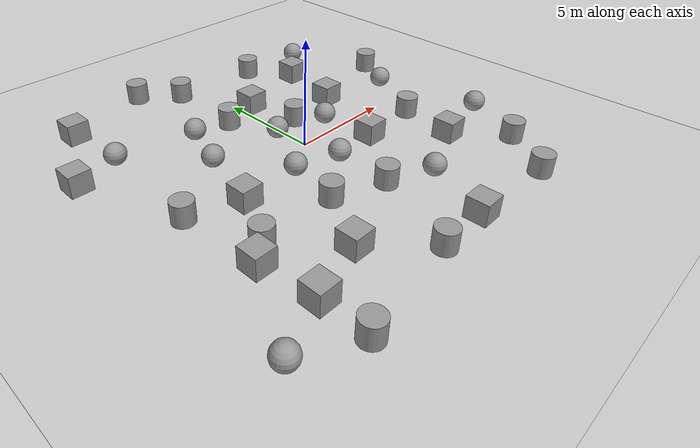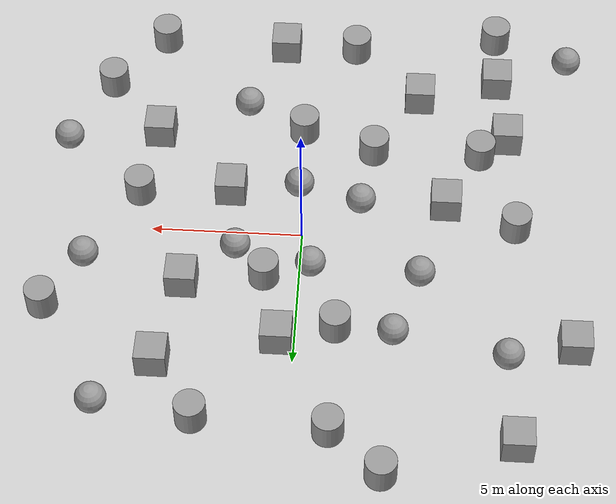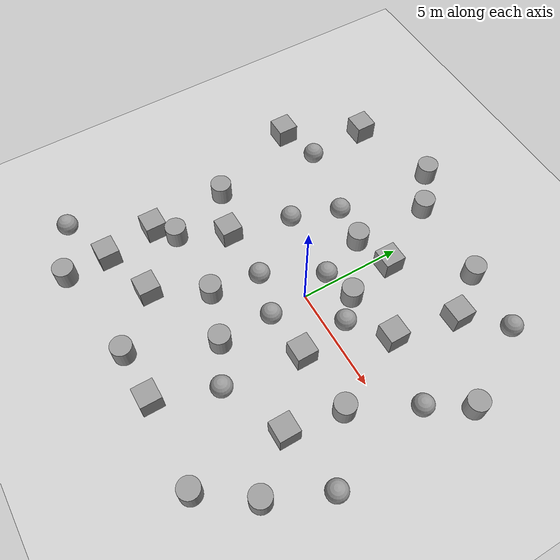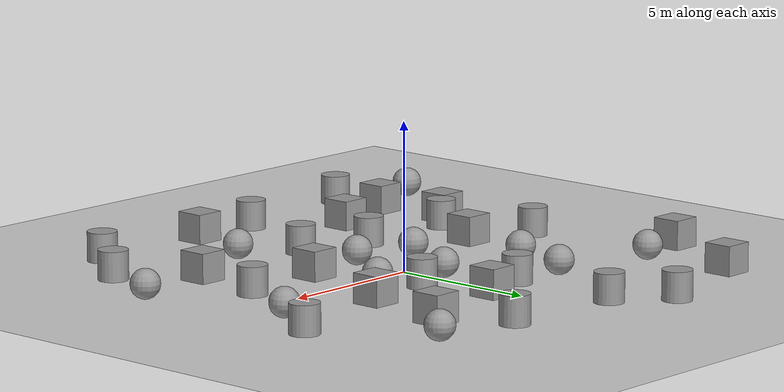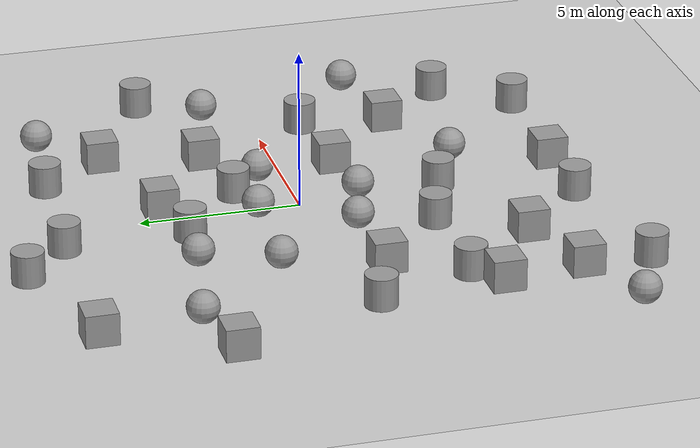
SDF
<sdf version="1.7">
 <world name="default">
  <light name="sun" type="directional">
   <pose>0 0 10 0 -0 0</pose>
   <diffuse>0.8 0.8 0.8 1</diffuse>
   <specular>0.2 0.2 0.2 1</specular>
   <attenuation>
    <range>1000</range>
    <constant>0.9</constant>
    <linear>0.01</linear>
    <quadratic>0.001</quadratic>
   </attenuation>
   <direction>-0.5 0.1 -0.9</direction>
   <spot><inner_angle>0</inner_angle><outer_angle>0</outer_angle><falloff>0</falloff></spot>
  </light>
  <model name="ground_plane">
   <static>1</static>
   <link name="link">
    <collision name="collision">
     <geometry><plane><normal>0 0 1</normal><size>100 100</size></plane></geometry>
     <surface>
      <contact><collide_bitmask>65535</collide_bitmask></contact>
      <friction><ode><mu>100</mu><mu2>50</mu2></ode></friction>
     </surface>
    </collision>
    <visual name="visual">
     <cast_shadows>0</cast_shadows>
     <geometry><plane><normal>0 0 1</normal><size>100 100</size></plane></geometry>
     <material>
      <script><uri>file://media/materials/scripts/gazebo.material</uri><name>Gazebo/Grey</name></script>
     </material>
    </visual>
   </link>
  </model>
  <gravity>0 0 -9.8</gravity>
  <magnetic_field>6e-06 2.3e-05 -4.2e-05</magnetic_field>
  <atmosphere type="adiabatic"/>
  <physics type="ode">
   <max_step_size>0.001</max_step_size>
   <real_time_factor>1</real_time_factor>
   <real_time_update_rate>1000</real_time_update_rate>
  </physics>
  <scene><ambient>0.4 0.4 0.4 1</ambient><background>0.7 0.7 0.7 1</background><shadows>1</shadows></scene>
  <spherical_coordinates>
   <surface_model>EARTH_WGS84</surface_model>
   <latitude_deg>0</latitude_deg>
   <longitude_deg>0</longitude_deg>
   <elevation>0</elevation>
   <heading_deg>0</heading_deg>
  </spherical_coordinates>
  <model name="unit_sphere">
   <pose>-0.365175 1.39418 0.5 0 -0 0</pose>
   <link name="link">
    <inertial>
     <mass>1</mass>
     <inertia><ixx>0.1</ixx><ixy>0</ixy><ixz>0</ixz><iyy>0.1</iyy><iyz>0</iyz><izz>0.1</izz></inertia>
    </inertial>
    <collision name="collision"><geometry><sphere><radius>0.5</radius></sphere></geometry></collision>
    <visual name="visual">
     <geometry><sphere><radius>0.5</radius></sphere></geometry>
     <material>
      <script><name>Gazebo/Grey</name><uri>file://media/materials/scripts/gazebo.material</uri></script>
     </material>
    </visual>
   </link>
  </model>
  <model name="unit_sphere_0">
   <pose>-3.13619 3.92076 0.5 0 -0 0</pose>
   <link name="link">
    <inertial>
     <mass>1</mass>
     <inertia><ixx>0.1</ixx><ixy>0</ixy><ixz>0</ixz><iyy>0.1</iyy><iyz>0</iyz><izz>0.1</izz></inertia>
    </inertial>
    <collision name="collision"><geometry><sphere><radius>0.5</radius></sphere></geometry></collision>
    <visual name="visual">
     <geometry><sphere><radius>0.5</radius></sphere></geometry>
     <material>
      <script><name>Gazebo/Grey</name><uri>file://media/materials/scripts/gazebo.material</uri></script>
     </material>
    </visual>
   </link>
  </model>
  <model name="unit_sphere_1">
   <pose>-3.94321 1.59424 0.5 0 -0 0</pose>
   <link name="link">
    <inertial>
     <mass>1</mass>
     <inertia><ixx>0.1</ixx><ixy>0</ixy><ixz>0</ixz><iyy>0.1</iyy><iyz>0</iyz><izz>0.1</izz></inertia>
    </inertial>
    <collision name="collision"><geometry><sphere><radius>0.5</radius></sphere></geometry></collision>
    <visual name="visual">
     <geometry><sphere><radius>0.5</radius></sphere></geometry>
     <material>
      <script><name>Gazebo/Grey</name><uri>file://media/materials/scripts/gazebo.material</uri></script>
     </material>
    </visual>
   </link>
  </model>
  <model name="unit_sphere_2">
   <pose>-8.93626 -7.95733 0.5 0 -0 0</pose>
   <link name="link">
    <inertial>
     <mass>1</mass>
     <inertia><ixx>0.1</ixx><ixy>0</ixy><ixz>0</ixz><iyy>0.1</iyy><iyz>0</iyz><izz>0.1</izz></inertia>
    </inertial>
    <collision name="collision"><geometry><sphere><radius>0.5</radius></sphere></geometry></collision>
    <visual name="visual">
     <geometry><sphere><radius>0.5</radius></sphere></geometry>
     <material>
      <script><name>Gazebo/Grey</name><uri>file://media/materials/scripts/gazebo.material</uri></script>
     </material>
    </visual>
   </link>
  </model>
  <model name="unit_sphere_3">
   <pose>2.14733 -5.42561 0.5 0 -0 0</pose>
   <link name="link">
    <inertial>
     <mass>1</mass>
     <inertia><ixx>0.1</ixx><ixy>0</ixy><ixz>0</ixz><iyy>0.1</iyy><iyz>0</iyz><izz>0.1</izz></inertia>
    </inertial>
    <collision name="collision"><geometry><sphere><radius>0.5</radius></sphere></geometry></collision>
    <visual name="visual">
     <geometry><sphere><radius>0.5</radius></sphere></geometry>
     <material>
      <script><name>Gazebo/Grey</name><uri>file://media/materials/scripts/gazebo.material</uri></script>
     </material>
    </visual>
   </link>
  </model>
  <model name="unit_sphere_4">
   <pose>7.08895 1.4019 0.5 0 -0 0</pose>
   <link name="link">
    <inertial>
     <mass>1</mass>
     <inertia><ixx>0.1</ixx><ixy>0</ixy><ixz>0</ixz><iyy>0.1</iyy><iyz>0</iyz><izz>0.1</izz></inertia>
    </inertial>
    <collision name="collision"><geometry><sphere><radius>0.5</radius></sphere></geometry></collision>
    <visual name="visual">
     <geometry><sphere><radius>0.5</radius></sphere></geometry>
     <material>
      <script><name>Gazebo/Grey</name><uri>file://media/materials/scripts/gazebo.material</uri></script>
     </material>
    </visual>
   </link>
  </model>
  <model name="unit_box">
   <pose>-3.77675 -6.11785 0.499995 0 1e-05 0</pose>
   <link name="link">
    <inertial>
     <mass>1</mass>
     <inertia>
      <ixx>0.166667</ixx>
      <ixy>0</ixy>
      <ixz>0</ixz>
      <iyy>0.166667</iyy>
      <iyz>0</iyz>
      <izz>0.166667</izz>
     </inertia>
    </inertial>
    <collision name="collision"><geometry><box><size>1 1 1</size></box></geometry></collision>
    <visual name="visual">
     <geometry><box><size>1 1 1</size></box></geometry>
     <material>
      <script><name>Gazebo/Grey</name><uri>file://media/materials/scripts/gazebo.material</uri></script>
     </material>
    </visual>
   </link>
  </model>
  <model name="unit_box_0">
   <pose>4.39647 5.28922 0.499995 -1e-05 -0 -0</pose>
   <link name="link">
    <inertial>
     <mass>1</mass>
     <inertia>
      <ixx>0.166667</ixx>
      <ixy>0</ixy>
      <ixz>0</ixz>
      <iyy>0.166667</iyy>
      <iyz>0</iyz>
      <izz>0.166667</izz>
     </inertia>
    </inertial>
    <collision name="collision"><geometry><box><size>1 1 1</size></box></geometry></collision>
    <visual name="visual">
     <geometry><box><size>1 1 1</size></box></geometry>
     <material>
      <script><name>Gazebo/Grey</name><uri>file://media/materials/scripts/gazebo.material</uri></script>
     </material>
    </visual>
   </link>
  </model>
  <model name="unit_box_1">
   <pose>-7.03873 7.73099 0.499995 0 1e-05 0</pose>
   <link name="link">
    <inertial>
     <mass>1</mass>
     <inertia>
      <ixx>0.166667</ixx>
      <ixy>0</ixy>
      <ixz>0</ixz>
      <iyy>0.166667</iyy>
      <iyz>0</iyz>
      <izz>0.166667</izz>
     </inertia>
    </inertial>
    <collision name="collision"><geometry><box><size>1 1 1</size></box></geometry></collision>
    <visual name="visual">
     <geometry><box><size>1 1 1</size></box></geometry>
     <material>
      <script><name>Gazebo/Grey</name><uri>file://media/materials/scripts/gazebo.material</uri></script>
     </material>
    </visual>
   </link>
  </model>
  <model name="unit_box_2">
   <pose>-8.89921 4.11041 0.499995 -1e-05 -0 -0</pose>
   <link name="link">
    <inertial>
     <mass>1</mass>
     <inertia>
      <ixx>0.166667</ixx>
      <ixy>0</ixy>
      <ixz>0</ixz>
      <iyy>0.166667</iyy>
      <iyz>0</iyz>
      <izz>0.166667</izz>
     </inertia>
    </inertial>
    <collision name="collision"><geometry><box><size>1 1 1</size></box></geometry></collision>
    <visual name="visual">
     <geometry><box><size>1 1 1</size></box></geometry>
     <material>
      <script><name>Gazebo/Grey</name><uri>file://media/materials/scripts/gazebo.material</uri></script>
     </material>
    </visual>
   </link>
  </model>
  <model name="unit_box_3">
   <pose>-6.80534 -4.40455 0.499995 0 1e-05 0</pose>
   <link name="link">
    <inertial>
     <mass>1</mass>
     <inertia>
      <ixx>0.166667</ixx>
      <ixy>0</ixy>
      <ixz>0</ixz>
      <iyy>0.166667</iyy>
      <iyz>0</iyz>
      <izz>0.166667</izz>
     </inertia>
    </inertial>
    <collision name="collision"><geometry><box><size>1 1 1</size></box></geometry></collision>
    <visual name="visual">
     <geometry><box><size>1 1 1</size></box></geometry>
     <material>
      <script><name>Gazebo/Grey</name><uri>file://media/materials/scripts/gazebo.material</uri></script>
     </material>
    </visual>
   </link>
  </model>
  <model name="unit_box_4">
   <pose>5.12707 -4.10557 0.499995 -1e-05 -0 -0</pose>
   <link name="link">
    <inertial>
     <mass>1</mass>
     <inertia>
      <ixx>0.166667</ixx>
      <ixy>0</ixy>
      <ixz>0</ixz>
      <iyy>0.166667</iyy>
      <iyz>0</iyz>
      <izz>0.166667</izz>
     </inertia>
    </inertial>
    <collision name="collision"><geometry><box><size>1 1 1</size></box></geometry></collision>
    <visual name="visual">
     <geometry><box><size>1 1 1</size></box></geometry>
     <material>
      <script><name>Gazebo/Grey</name><uri>file://media/materials/scripts/gazebo.material</uri></script>
     </material>
    </visual>
   </link>
  </model>
  <model name="unit_cylinder">
   <pose>-2.25785 -3.64299 0.499992 -3e-06 2e-06 0</pose>
   <link name="link">
    <inertial>
     <mass>1</mass>
     <inertia><ixx>0.145833</ixx><ixy>0</ixy><ixz>0</ixz><iyy>0.145833</iyy><iyz>0</iyz><izz>0.125</izz></inertia>
    </inertial>
    <collision name="collision">
     <geometry><cylinder><radius>0.5</radius><length>1</length></cylinder></geometry>
    </collision>
    <visual name="visual">
     <geometry><cylinder><radius>0.5</radius><length>1</length></cylinder></geometry>
     <material>
      <script><name>Gazebo/Grey</name><uri>file://media/materials/scripts/gazebo.material</uri></script>
     </material>
    </visual>
   </link>
  </model>
  <model name="unit_cylinder_0">
   <pose>-1.465 -8.34229 0.499992 -3e-06 2e-06 0</pose>
   <link name="link">
    <inertial>
     <mass>1</mass>
     <inertia><ixx>0.145833</ixx><ixy>0</ixy><ixz>0</ixz><iyy>0.145833</iyy><iyz>0</iyz><izz>0.125</izz></inertia>
    </inertial>
    <collision name="collision">
     <geometry><cylinder><radius>0.5</radius><length>1</length></cylinder></geometry>
    </collision>
    <visual name="visual">
     <geometry><cylinder><radius>0.5</radius><length>1</length></cylinder></geometry>
     <material>
      <script><name>Gazebo/Grey</name><uri>file://media/materials/scripts/gazebo.material</uri></script>
     </material>
    </visual>
   </link>
  </model>
  <model name="unit_cylinder_1">
   <pose>2.9875 7.30471 0.499992 -3e-06 2e-06 0</pose>
   <link name="link">
    <inertial>
     <mass>1</mass>
     <inertia><ixx>0.145833</ixx><ixy>0</ixy><ixz>0</ixz><iyy>0.145833</iyy><iyz>0</iyz><izz>0.125</izz></inertia>
    </inertial>
    <collision name="collision">
     <geometry><cylinder><radius>0.5</radius><length>1</length></cylinder></geometry>
    </collision>
    <visual name="visual">
     <geometry><cylinder><radius>0.5</radius><length>1</length></cylinder></geometry>
     <material>
      <script><name>Gazebo/Grey</name><uri>file://media/materials/scripts/gazebo.material</uri></script>
     </material>
    </visual>
   </link>
  </model>
  <model name="unit_cylinder_2">
   <pose>-1.25717 7.5618 0.499992 -3e-06 2e-06 0</pose>
   <link name="link">
    <inertial>
     <mass>1</mass>
     <inertia><ixx>0.145833</ixx><ixy>0</ixy><ixz>0</ixz><iyy>0.145833</iyy><iyz>0</iyz><izz>0.125</izz></inertia>
    </inertial>
    <collision name="collision">
     <geometry><cylinder><radius>0.5</radius><length>1</length></cylinder></geometry>
    </collision>
    <visual name="visual">
     <geometry><cylinder><radius>0.5</radius><length>1</length></cylinder></geometry>
     <material>
      <script><name>Gazebo/Grey</name><uri>file://media/materials/scripts/gazebo.material</uri></script>
     </material>
    </visual>
   </link>
  </model>
  <model name="unit_cylinder_3">
   <pose>-7.07483 -0.563261 0.499993 -3e-06 2e-06 0</pose>
   <link name="link">
    <inertial>
     <mass>1</mass>
     <inertia><ixx>0.145833</ixx><ixy>0</ixy><ixz>0</ixz><iyy>0.145833</iyy><iyz>0</iyz><izz>0.125</izz></inertia>
    </inertial>
    <collision name="collision">
     <geometry><cylinder><radius>0.5</radius><length>1</length></cylinder></geometry>
    </collision>
    <visual name="visual">
     <geometry><cylinder><radius>0.5</radius><length>1</length></cylinder></geometry>
     <material>
      <script><name>Gazebo/Grey</name><uri>file://media/materials/scripts/gazebo.material</uri></script>
     </material>
    </visual>
   </link>
  </model>
  <model name="unit_cylinder_4">
   <pose>7.01305 -6.2888 0.499998 3e-06 -2e-06 0</pose>
   <link name="link">
    <inertial>
     <mass>1</mass>
     <inertia><ixx>0.145833</ixx><ixy>0</ixy><ixz>0</ixz><iyy>0.145833</iyy><iyz>0</iyz><izz>0.125</izz></inertia>
    </inertial>
    <collision name="collision">
     <geometry><cylinder><radius>0.5</radius><length>1</length></cylinder></geometry>
    </collision>
    <visual name="visual">
     <geometry><cylinder><radius>0.5</radius><length>1</length></cylinder></geometry>
     <material>
      <script><name>Gazebo/Grey</name><uri>file://media/materials/scripts/gazebo.material</uri></script>
     </material>
    </visual>
   </link>
  </model>
  <model name="unit_box_5">
   <pose>2.4843 -1.66689 0.499995 0 1e-05 0</pose>
   <link name="link">
    <inertial>
     <mass>1</mass>
     <inertia>
      <ixx>0.166667</ixx>
      <ixy>0</ixy>
      <ixz>0</ixz>
      <iyy>0.166667</iyy>
      <iyz>0</iyz>
      <izz>0.166667</izz>
     </inertia>
    </inertial>
    <collision name="collision"><geometry><box><size>1 1 1</size></box></geometry></collision>
    <visual name="visual">
     <geometry><box><size>1 1 1</size></box></geometry>
     <material>
      <script><name>Gazebo/Grey</name><uri>file://media/materials/scripts/gazebo.material</uri></script>
     </material>
    </visual>
   </link>
  </model>
  <model name="unit_sphere_5">
   <pose>6.09774 6.97308 0.5 0 -0 0</pose>
   <link name="link">
    <inertial>
     <mass>1</mass>
     <inertia><ixx>0.1</ixx><ixy>0</ixy><ixz>0</ixz><iyy>0.1</iyy><iyz>0</iyz><izz>0.1</izz></inertia>
    </inertial>
    <collision name="collision"><geometry><sphere><radius>0.5</radius></sphere></geometry></collision>
    <visual name="visual">
     <geometry><sphere><radius>0.5</radius></sphere></geometry>
     <material>
      <script><name>Gazebo/Grey</name><uri>file://media/materials/scripts/gazebo.material</uri></script>
     </material>
    </visual>
   </link>
  </model>
  <model name="unit_cylinder_5">
   <pose>-5.88272 -3.62949 0.499998 3e-06 -2e-06 0</pose>
   <link name="link">
    <inertial>
     <mass>1</mass>
     <inertia><ixx>0.145833</ixx><ixy>0</ixy><ixz>0</ixz><iyy>0.145833</iyy><iyz>0</iyz><izz>0.125</izz></inertia>
    </inertial>
    <collision name="collision">
     <geometry><cylinder><radius>0.5</radius><length>1</length></cylinder></geometry>
    </collision>
    <visual name="visual">
     <geometry><cylinder><radius>0.5</radius><length>1</length></cylinder></geometry>
     <material>
      <script><name>Gazebo/Grey</name><uri>file://media/materials/scripts/gazebo.material</uri></script>
     </material>
    </visual>
   </link>
  </model>
  <model name="unit_box_6">
   <pose>1.04057 -8.30067 0.499995 -1e-05 -0 -0</pose>
   <link name="link">
    <inertial>
     <mass>1</mass>
     <inertia>
      <ixx>0.166667</ixx>
      <ixy>0</ixy>
      <ixz>0</ixz>
      <iyy>0.166667</iyy>
      <iyz>0</iyz>
      <izz>0.166667</izz>
     </inertia>
    </inertial>
    <collision name="collision"><geometry><box><size>1 1 1</size></box></geometry></collision>
    <visual name="visual">
     <geometry><box><size>1 1 1</size></box></geometry>
     <material>
      <script><name>Gazebo/Grey</name><uri>file://media/materials/scripts/gazebo.material</uri></script>
     </material>
    </visual>
   </link>
  </model>
  <model name="unit_sphere_6">
   <pose>8.23278 -3.57573 0.5 0 -0 0</pose>
   <link name="link">
    <inertial>
     <mass>1</mass>
     <inertia><ixx>0.1</ixx><ixy>0</ixy><ixz>0</ixz><iyy>0.1</iyy><iyz>0</iyz><izz>0.1</izz></inertia>
    </inertial>
    <collision name="collision"><geometry><sphere><radius>0.5</radius></sphere></geometry></collision>
    <visual name="visual">
     <geometry><sphere><radius>0.5</radius></sphere></geometry>
     <material>
      <script><name>Gazebo/Grey</name><uri>file://media/materials/scripts/gazebo.material</uri></script>
     </material>
    </visual>
   </link>
  </model>
  <model name="unit_cylinder_6">
   <pose>8.19538 3.31141 0.499993 -3e-06 3e-06 0</pose>
   <link name="link">
    <inertial>
     <mass>1</mass>
     <inertia><ixx>0.145833</ixx><ixy>0</ixy><ixz>0</ixz><iyy>0.145833</iyy><iyz>0</iyz><izz>0.125</izz></inertia>
    </inertial>
    <collision name="collision">
     <geometry><cylinder><radius>0.5</radius><length>1</length></cylinder></geometry>
    </collision>
    <visual name="visual">
     <geometry><cylinder><radius>0.5</radius><length>1</length></cylinder></geometry>
     <material>
      <script><name>Gazebo/Grey</name><uri>file://media/materials/scripts/gazebo.material</uri></script>
     </material>
    </visual>
   </link>
  </model>
  <model name="unit_sphere_7">
   <pose>0.194645 -1.89874 0.5 0 -0 0</pose>
   <link name="link">
    <inertial>
     <mass>1</mass>
     <inertia><ixx>0.1</ixx><ixy>0</ixy><ixz>0</ixz><iyy>0.1</iyy><iyz>0</iyz><izz>0.1</izz></inertia>
    </inertial>
    <collision name="collision"><geometry><sphere><radius>0.5</radius></sphere></geometry></collision>
    <visual name="visual">
     <geometry><sphere><radius>0.5</radius></sphere></geometry>
     <material>
      <script><name>Gazebo/Grey</name><uri>file://media/materials/scripts/gazebo.material</uri></script>
     </material>
    </visual>
   </link>
  </model>
  <model name="unit_box_7">
   <pose>-4.7492 -1.4027 0.499995 -1e-05 -0 -0</pose>
   <link name="link">
    <inertial>
     <mass>1</mass>
     <inertia>
      <ixx>0.166667</ixx>
      <ixy>0</ixy>
      <ixz>0</ixz>
      <iyy>0.166667</iyy>
      <iyz>0</iyz>
      <izz>0.166667</izz>
     </inertia>
    </inertial>
    <collision name="collision"><geometry><box><size>1 1 1</size></box></geometry></collision>
    <visual name="visual">
     <geometry><box><size>1 1 1</size></box></geometry>
     <material>
      <script><name>Gazebo/Grey</name><uri>file://media/materials/scripts/gazebo.material</uri></script>
     </material>
    </visual>
   </link>
  </model>
  <model name="unit_cylinder_7">
   <pose>-6.42688 -9.05441 0.499992 -3e-06 3e-06 0</pose>
   <link name="link">
    <inertial>
     <mass>1</mass>
     <inertia><ixx>0.145833</ixx><ixy>0</ixy><ixz>0</ixz><iyy>0.145833</iyy><iyz>0</iyz><izz>0.125</izz></inertia>
    </inertial>
    <collision name="collision">
     <geometry><cylinder><radius>0.5</radius><length>1</length></cylinder></geometry>
    </collision>
    <visual name="visual">
     <geometry><cylinder><radius>0.5</radius><length>1</length></cylinder></geometry>
     <material>
      <script><name>Gazebo/Grey</name><uri>file://media/materials/scripts/gazebo.material</uri></script>
     </material>
    </visual>
   </link>
  </model>
  <model name="unit_box_8">
   <pose>3.77959 2.20705 0.499995 -1e-05 -0 -0</pose>
   <link name="link">
    <inertial>
     <mass>1</mass>
     <inertia>
      <ixx>0.166667</ixx>
      <ixy>0</ixy>
      <ixz>0</ixz>
      <iyy>0.166667</iyy>
      <iyz>0</iyz>
      <izz>0.166667</izz>
     </inertia>
    </inertial>
    <collision name="collision"><geometry><box><size>1 1 1</size></box></geometry></collision>
    <visual name="visual">
     <geometry><box><size>1 1 1</size></box></geometry>
     <material>
      <script><name>Gazebo/Grey</name><uri>file://media/materials/scripts/gazebo.material</uri></script>
     </material>
    </visual>
   </link>
  </model>
  <model name="unit_cylinder_8">
   <pose>5.54816 -1.46704 0.499998 3e-06 -3e-06 0</pose>
   <link name="link">
    <inertial>
     <mass>1</mass>
     <inertia><ixx>0.145833</ixx><ixy>0</ixy><ixz>0</ixz><iyy>0.145833</iyy><iyz>0</iyz><izz>0.125</izz></inertia>
    </inertial>
    <collision name="collision">
     <geometry><cylinder><radius>0.5</radius><length>1</length></cylinder></geometry>
    </collision>
    <visual name="visual">
     <geometry><cylinder><radius>0.5</radius><length>1</length></cylinder></geometry>
     <material>
      <script><name>Gazebo/Grey</name><uri>file://media/materials/scripts/gazebo.material</uri></script>
     </material>
    </visual>
   </link>
  </model>
  <model name="unit_cylinder_9">
   <pose>5.35637 -8.51224 0.499998 3e-06 -3e-06 0</pose>
   <link name="link">
    <inertial>
     <mass>1</mass>
     <inertia><ixx>0.145833</ixx><ixy>0</ixy><ixz>0</ixz><iyy>0.145833</iyy><iyz>0</iyz><izz>0.125</izz></inertia>
    </inertial>
    <collision name="collision">
     <geometry><cylinder><radius>0.5</radius><length>1</length></cylinder></geometry>
    </collision>
    <visual name="visual">
     <geometry><cylinder><radius>0.5</radius><length>1</length></cylinder></geometry>
     <material>
      <script><name>Gazebo/Grey</name><uri>file://media/materials/scripts/gazebo.material</uri></script>
     </material>
    </visual>
   </link>
  </model>
  <model name="unit_box_9">
   <pose>0.550518 4.24188 0.499995 0 1e-05 0</pose>
   <link name="link">
    <inertial>
     <mass>1</mass>
     <inertia>
      <ixx>0.166667</ixx>
      <ixy>0</ixy>
      <ixz>0</ixz>
      <iyy>0.166667</iyy>
      <iyz>0</iyz>
      <izz>0.166667</izz>
     </inertia>
    </inertial>
    <collision name="collision"><geometry><box><size>1 1 1</size></box></geometry></collision>
    <visual name="visual">
     <geometry><box><size>1 1 1</size></box></geometry>
     <material>
      <script><name>Gazebo/Grey</name><uri>file://media/materials/scripts/gazebo.material</uri></script>
     </material>
    </visual>
   </link>
  </model>
  <model name="unit_cylinder_10">
   <pose>-2.91928 8.97815 0.499992 -3e-06 4e-06 0</pose>
   <link name="link">
    <inertial>
     <mass>1</mass>
     <inertia><ixx>0.145833</ixx><ixy>0</ixy><ixz>0</ixz><iyy>0.145833</iyy><iyz>0</iyz><izz>0.125</izz></inertia>
    </inertial>
    <collision name="collision">
     <geometry><cylinder><radius>0.5</radius><length>1</length></cylinder></geometry>
    </collision>
    <visual name="visual">
     <geometry><cylinder><radius>0.5</radius><length>1</length></cylinder></geometry>
     <material>
      <script><name>Gazebo/Grey</name><uri>file://media/materials/scripts/gazebo.material</uri></script>
     </material>
    </visual>
   </link>
  </model>
  <model name="unit_box_10">
   <pose>-6.45378 -6.95669 0.499995 0 1e-05 0</pose>
   <link name="link">
    <inertial>
     <mass>1</mass>
     <inertia>
      <ixx>0.166667</ixx>
      <ixy>0</ixy>
      <ixz>0</ixz>
      <iyy>0.166667</iyy>
      <iyz>0</iyz>
      <izz>0.166667</izz>
     </inertia>
    </inertial>
    <collision name="collision"><geometry><box><size>1 1 1</size></box></geometry></collision>
    <visual name="visual">
     <geometry><box><size>1 1 1</size></box></geometry>
     <material>
      <script><name>Gazebo/Grey</name><uri>file://media/materials/scripts/gazebo.material</uri></script>
     </material>
    </visual>
   </link>
  </model>
  <model name="unit_sphere_8">
   <pose>-1.90197 -1.31598 0.5 0 -0 0</pose>
   <link name="link">
    <inertial>
     <mass>1</mass>
     <inertia><ixx>0.1</ixx><ixy>0</ixy><ixz>0</ixz><iyy>0.1</iyy><iyz>0</iyz><izz>0.1</izz></inertia>
    </inertial>
    <collision name="collision"><geometry><sphere><radius>0.5</radius></sphere></geometry></collision>
    <visual name="visual">
     <geometry><sphere><radius>0.5</radius></sphere></geometry>
     <material>
      <script><name>Gazebo/Grey</name><uri>file://media/materials/scripts/gazebo.material</uri></script>
     </material>
    </visual>
   </link>
  </model>
  <model name="unit_sphere_9">
   <pose>2.14467 0.792216 0.5 0 -0 0</pose>
   <link name="link">
    <inertial>
     <mass>1</mass>
     <inertia><ixx>0.1</ixx><ixy>0</ixy><ixz>0</ixz><iyy>0.1</iyy><iyz>0</iyz><izz>0.1</izz></inertia>
    </inertial>
    <collision name="collision"><geometry><sphere><radius>0.5</radius></sphere></geometry></collision>
    <visual name="visual">
     <geometry><sphere><radius>0.5</radius></sphere></geometry>
     <material>
      <script><name>Gazebo/Grey</name><uri>file://media/materials/scripts/gazebo.material</uri></script>
     </material>
    </visual>
   </link>
  </model>
  <model name="unit_sphere_10">
   <pose>-6.78868 4.64624 0.5 0 -0 0</pose>
   <link name="link">
    <inertial>
     <mass>1</mass>
     <inertia><ixx>0.1</ixx><ixy>0</ixy><ixz>0</ixz><iyy>0.1</iyy><iyz>0</iyz><izz>0.1</izz></inertia>
    </inertial>
    <collision name="collision"><geometry><sphere><radius>0.5</radius></sphere></geometry></collision>
    <visual name="visual">
     <geometry><sphere><radius>0.5</radius></sphere></geometry>
     <material>
      <script><name>Gazebo/Grey</name><uri>file://media/materials/scripts/gazebo.material</uri></script>
     </material>
    </visual>
   </link>
  </model>
  <model name="unit_cylinder_11">
   <pose>1.13905 1.80022 0.499997 3e-06 4e-06 -0</pose>
   <link name="link">
    <inertial>
     <mass>1</mass>
     <inertia><ixx>0.145833</ixx><ixy>0</ixy><ixz>0</ixz><iyy>0.145833</iyy><iyz>0</iyz><izz>0.125</izz></inertia>
    </inertial>
    <collision name="collision">
     <geometry><cylinder><radius>0.5</radius><length>1</length></cylinder></geometry>
    </collision>
    <visual name="visual">
     <geometry><cylinder><radius>0.5</radius><length>1</length></cylinder></geometry>
     <material>
      <script><name>Gazebo/Grey</name><uri>file://media/materials/scripts/gazebo.material</uri></script>
     </material>
    </visual>
   </link>
  </model>
  <model name="unit_cylinder_12">
   <pose>0.173278 -4.46057 0.499997 3e-06 4e-06 -0</pose>
   <link name="link">
    <inertial>
     <mass>1</mass>
     <inertia><ixx>0.145833</ixx><ixy>0</ixy><ixz>0</ixz><iyy>0.145833</iyy><iyz>0</iyz><izz>0.125</izz></inertia>
    </inertial>
    <collision name="collision">
     <geometry><cylinder><radius>0.5</radius><length>1</length></cylinder></geometry>
    </collision>
    <visual name="visual">
     <geometry><cylinder><radius>0.5</radius><length>1</length></cylinder></geometry>
     <material>
      <script><name>Gazebo/Grey</name><uri>file://media/materials/scripts/gazebo.material</uri></script>
     </material>
    </visual>
   </link>
  </model>
  <model name="unit_cylinder_13">
   <pose>-1.28522 3.73041 0.499997 3e-06 4e-06 -0</pose>
   <link name="link">
    <inertial>
     <mass>1</mass>
     <inertia><ixx>0.145833</ixx><ixy>0</ixy><ixz>0</ixz><iyy>0.145833</iyy><iyz>0</iyz><izz>0.125</izz></inertia>
    </inertial>
    <collision name="collision">
     <geometry><cylinder><radius>0.5</radius><length>1</length></cylinder></geometry>
    </collision>
    <visual name="visual">
     <geometry><cylinder><radius>0.5</radius><length>1</length></cylinder></geometry>
     <material>
      <script><name>Gazebo/Grey</name><uri>file://media/materials/scripts/gazebo.material</uri></script>
     </material>
    </visual>
   </link>
  </model>
 </world>
</sdf>
